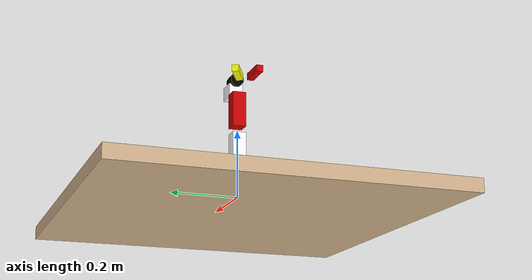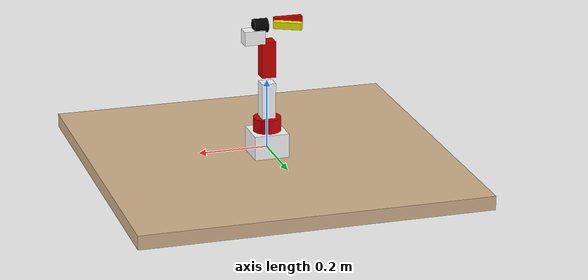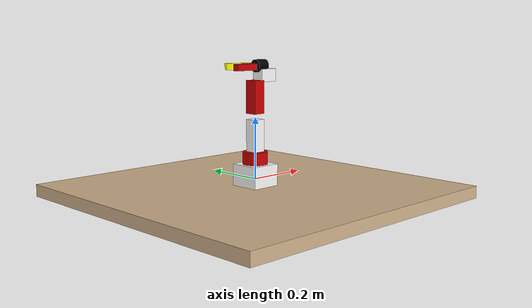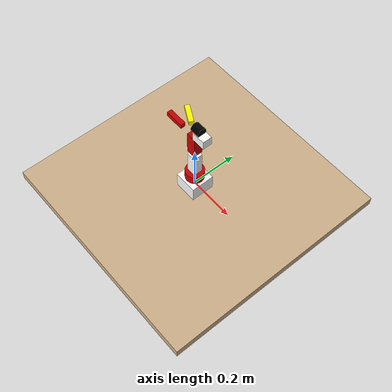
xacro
<?xml version="1.0"?>
<robot name="armczb" xmlns:xacro="http://www.ros.org/wiki/xacro">

  <material name="Black"> <color rgba="0.0 0.0 0.0 1.0"/> </material>
  <material name="Red">   <color rgba="0.8 0.0 0.0 1.0"/> </material>
  <material name="White"> <color rgba="1.0 1.0 1.0 1.0"/> </material>
  <material name="Brown"> <color rgba="0.82 0.7 0.55 1.0"/> </material>
  <material name="Yellow"><color rgba="1.0 1.0 0   1.0"/> </material>

  <property name="deg_to_rad" value="0.01745329251994329577"/>
  <property name="M_PI" value="3.14159"/>

  <property name="shoulder_pan_width" value="0.04" />
  <property name="shoulder_pan_len"   value="0.08" />

  <property name="shoulder_pitch_len" value="0.105" />
  <property name="shoulder_pitch_width" value="0.04" />
  <property name="shoulder_pitch_height" value="0.04" />

  <property name="elbow_pitch_len" value="0.105" />
  <property name="elbow_pitch_width" value="0.04" />
  <property name="elbow_pitch_height" value="0.04" />

  <property name="wrist_roll_width" value="0.02" />
  <property name="wrist_roll_len" value="0.04" />

  <property name="wrist_pitch_len" value="0.06" />
  <property name="wrist_pitch_width" value="0.04" />
  <property name="wrist_pitch_height" value="0.04" />

  <property name="finger_width" value="0.02" />
  <property name="finger_len"   value="0.08" />
  <property name="finger_h"   value="0.02" />

  <!-- Left gripper -->
  <property name="left_gripper_len" value="0.08" />
  <property name="left_gripper_width" value="0.01" />
  <property name="left_gripper_height" value="0.01" />

  <!-- Right gripper -->
  <property name="right_gripper_len" value="0.08" />
  <property name="right_gripper_width" value="0.01" />
  <property name="right_gripper_height" value="0.01" />

  <!-- Right gripper -->
  <property name="grasp_frame_len" value="0.02" />
  <property name="grasp_frame_width" value="0.02" />
  <property name="grasp_frame_height" value="0.02" />

  <xacro:macro name="inertial_matrix" params="mass">
    <inertial>
      <mass value="${mass}" />
      <inertia ixx="1.0" ixy="0.0" ixz="0.0" iyy="0.5" iyz="0.0"
	       izz="1.0" />
    </inertial>
  </xacro:macro>

  <!-- BASE LINK -->
  <link name="base_link">
    <visual>
      <origin xyz="0 0 0" rpy="${M_PI/2} 0 0" /> <!-- rotate PI/2 -->
      <geometry> <box size="0.1 0.1 0.1" /> </geometry>
      <material name="White" />
    </visual>

    <collision>
      <origin xyz="0 0 0" rpy="${M_PI/2} 0 0" /> <!-- rotate PI/2 -->
      <geometry> <box size="0.1 0.1 0.1" /> </geometry>
    </collision>

  </link>

  <gazebo reference="base_link">
    <material>Gazebo/White</material>
  </gazebo>

  <joint name="bottom_joint" type="fixed">
    <origin xyz="0 0 0" rpy="0 0 0" />
    <parent link="base_link"/>
    <child link="bottom_link"/>
  </joint>

  <link name="bottom_link">

    <visual>
      <origin xyz=" 0 0 -0.04"  rpy="0 0 0"/>
      <geometry> <box size="1 1 0.04" /> </geometry>
      <material name="Brown" />
    </visual>

    <collision>
      <origin xyz=" 0 0 -0.04"  rpy="0 0 0"/>
      <geometry> <box size="1 1 0.04" /> </geometry>
    </collision>

  </link>

  <!-- /////////   shoulder pan   /////////  -->

  <joint name="shoulder_pan_joint" type="revolute">
    <parent   link="base_link"/>
    <child    link="shoulder_pan_link"/>
    <origin   xyz="0 0 0.05" rpy="0 ${M_PI/2} ${M_PI*0}" />
    <axis     xyz="-1 0 0" />
    <limit    effort="300" velocity="1" lower="-2.61799387799" upper="1.98394848567"/>
    <dynamics damping="50" friction="1"/>
  </joint>

  <link name="shoulder_pan_link" >
    <visual>
      <origin xyz="0 0 0" rpy="0 ${M_PI/2} 0" />
      <geometry>
        <cylinder radius="${shoulder_pan_width}" length="${shoulder_pan_len}"/>
      </geometry>
      <material name="Red" />
    </visual>

    <collision>
      <origin xyz="0 0 0" rpy="0 ${M_PI/2} 0" />
      <geometry>
        <cylinder radius="${shoulder_pan_width}" length="${shoulder_pan_len}"/>
      </geometry>
    </collision>
    <xacro:inertial_matrix mass="1"/>
  </link>

  <!-- /////////   shoulder pitch  ////////  -->

  <joint name="shoulder_pitch_joint" type="revolute">
    <parent link="shoulder_pan_link"/>
    <child link="shoulder_pitch_link"/>
    <origin xyz="-0.041 0.0021 0.0" rpy="-${M_PI/2} 0 ${M_PI/2}" />
    <axis xyz="1 0 0" />
    <limit effort="300" velocity="1" lower="-1.19962513147" upper="1.89994105047" />
    <dynamics damping="50" friction="1"/>
  </joint>

  <link name="shoulder_pitch_link" >
    <visual>
      <origin xyz="-0.002 0 0.05" rpy="0 ${M_PI/2} 0" />
      <geometry>
        <box size="${shoulder_pitch_len} ${shoulder_pitch_width} ${shoulder_pitch_height}" />
      </geometry>
      <material name="White" />
    </visual>

    <collision>
      <origin xyz="-0.002 0 0.05" rpy="0 ${M_PI/2} 0" />
      <geometry>
        <box size="${shoulder_pitch_len} ${shoulder_pitch_width} ${shoulder_pitch_height}" />
      </geometry>
    </collision>
    <xacro:inertial_matrix mass="1"/>
  </link>

  <!-- /////////   elbow           ////////  -->

  <joint name="elbow_pitch_joint" type="revolute">
    <parent   link="shoulder_pitch_link"/>
    <child    link="elbow_pitch_link"/>
    <origin   xyz="-0.002 0 0.1206" rpy="${M_PI} 0 ${M_PI/2}" />
    <axis     xyz="0 1 0" />
    <limit    effort="300" velocity="1" lower="-1.5953400194" upper="1.93281579274" />
    <dynamics damping="50" friction="1"/>
  </joint>

  <link name="elbow_pitch_link" >
    <visual>
      <origin xyz="0 0 ${ -1 * elbow_pitch_len /2 }" rpy="0 ${M_PI/2} 0" />
      <geometry>
       <box size="${elbow_pitch_len} ${elbow_pitch_width} ${elbow_pitch_height}" />
      </geometry>
      <material name="Red" />
    </visual>

    <collision>
      <origin xyz="0 0 ${ -1 * elbow_pitch_len /2 }" rpy="0 ${M_PI/2} 0" />
      <geometry>
       <box size="${elbow_pitch_len} ${elbow_pitch_width} ${elbow_pitch_height}" />
      </geometry>
    </collision>
    <xacro:inertial_matrix mass="1"/>
  </link>

  <!-- /////////   wrist tilt      ////////  -->

  <joint name="wrist_pitch_joint" type="revolute">
    <parent   link="elbow_pitch_link"/>
    <child    link="wrist_pitch_link"/>
    <origin   xyz="0.0 0.0 -0.1201" rpy="${M_PI/2} 0 -${M_PI/2}" />
    <axis     xyz="1 0 0" />
    <limit    effort="300" velocity="1" lower="-1.5953400194" upper="1.98394848567" />
    <dynamics damping="50" friction="1"/>
  </joint>

  <link name="wrist_pitch_link">
    <visual>
      <origin xyz="0 0 0.04" rpy="0 ${M_PI/2} 0" />
      <geometry>
        <box size="${wrist_pitch_len} ${wrist_pitch_width} ${wrist_pitch_height}" />
      </geometry>
      <material name="White" />
    </visual>

    <collision>
      <origin xyz="0 0 0.04 " rpy="0 ${M_PI/2} 0" />
      <geometry>
        <box size="${wrist_pitch_len} ${wrist_pitch_width} ${wrist_pitch_height}" />
      </geometry>
    </collision>
    <xacro:inertial_matrix mass="1"/>
  </link>

  <!-- /////////   wrist rotation  ////////  -->

  <joint name="wrist_roll_joint" type="revolute">
    <parent link="wrist_pitch_link"/>
    <child link="wrist_roll_link"/>
    <origin xyz="0.0 -0.03 -.02" rpy="0 ${M_PI/2} 0" />
    <axis xyz="1 0 0" />
    <limit effort="300" velocity="1" lower="-1.2" upper="0.7" />
    <dynamics damping="50" friction="1"/>
  </joint>

  <link name="wrist_roll_link" >
    <visual>
      <origin xyz="-0.04 0 0" rpy="0 ${M_PI/2} 0" />
      <geometry>
        <cylinder radius="${wrist_roll_width}" length="${wrist_roll_len}"/>
      </geometry>
      <material name="Black" />
    </visual>

    <collision>
      <origin xyz="-0.04 0 0" rpy="0 ${M_PI/2} 0" />
      <geometry>
        <cylinder radius="${wrist_roll_width}" length="${wrist_roll_len}"/>
      </geometry>
    </collision>
    <xacro:inertial_matrix mass="1"/>
  </link>

  <joint name="pincer_joint" type="revolute">
    <parent link="wrist_roll_link"/>
    <child link="finger_link"/>
    <origin xyz="0.0 -0.00 -.0" rpy="0 0 ${M_PI/2} " />
    <axis xyz="1 0 0" />
    <limit effort="300" velocity="1" lower="1.51" upper="2.6128806087" />
    <dynamics damping="50" friction="1"/>
  </joint>

    <link name="finger_link" >
    <visual>
      <origin xyz="0.0 0 0.04" rpy="0 0 ${M_PI/2} " />
      <geometry>
        <box size="${finger_width} ${finger_h} ${finger_len}" />
      </geometry>
      <material name="Yellow" />
    </visual>

    <collision>
      <origin xyz="0 0 0" rpy="0 0 ${M_PI/2}" />
      <geometry>
        <cylinder radius="${finger_width}" length="${finger_len}"/>
      </geometry>
    </collision>
    <xacro:inertial_matrix mass="1"/>
  </link>

  <joint name="pincer_joint2" type="fixed">
    <parent link="wrist_roll_link"/>
    <child link="finger2_link"/>
    <origin xyz="0.0 -0.00 -.0" rpy="0 0 ${M_PI/2} " />
    <axis xyz="1 0 0" />
    <limit effort="300" velocity="1" lower="1.51" upper="2.6128806087" />
    <dynamics damping="50" friction="1"/>
  </joint>

  <link name="finger2_link" >
    <visual>
      <origin xyz="0 -0.05 0.03" rpy="0 0 ${M_PI/2} " />
      <geometry>
        <box size="${finger_len} ${finger_width} ${finger_h} " />
      </geometry>
      <material name="Red" />
    </visual>

    <collision>
      <origin xyz="0 0 0" rpy="0 0 ${M_PI/2}" />
      <geometry>
        <cylinder radius="${finger_width}" length="${finger_len}"/>
      </geometry>
    </collision>
    <xacro:inertial_matrix mass="1"/>
  </link>

</robot>
